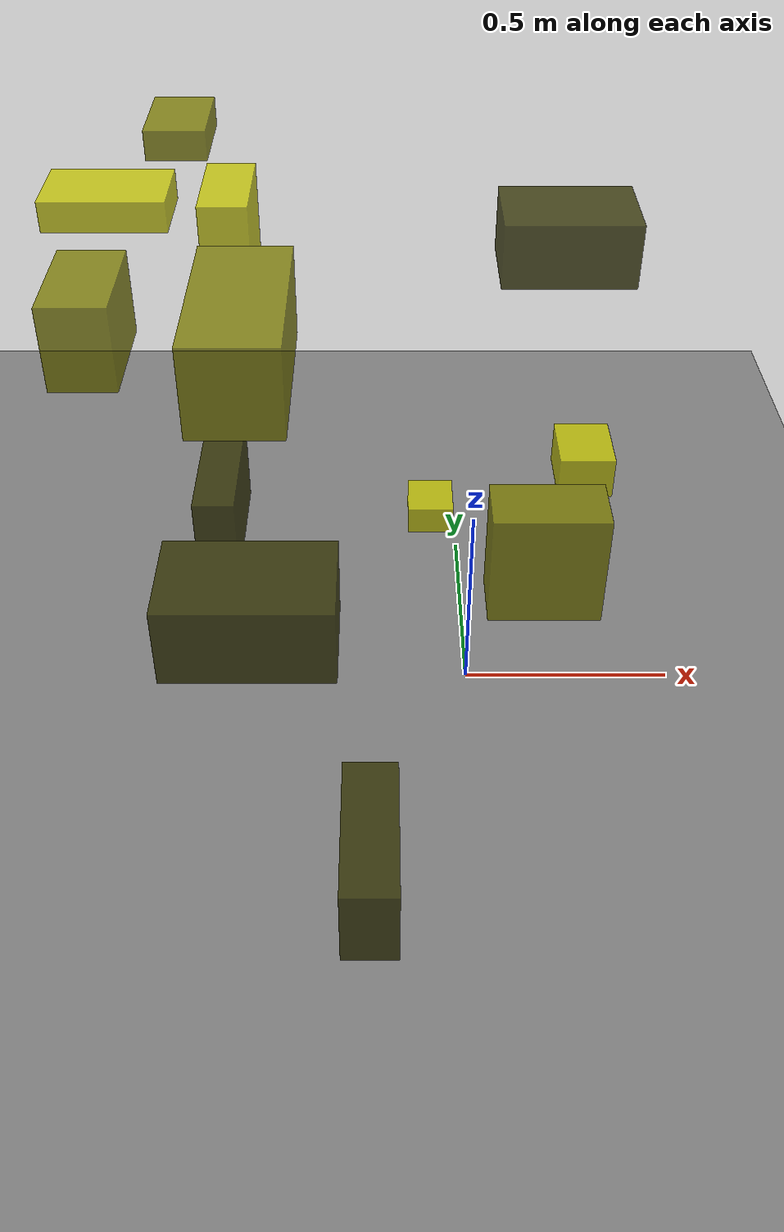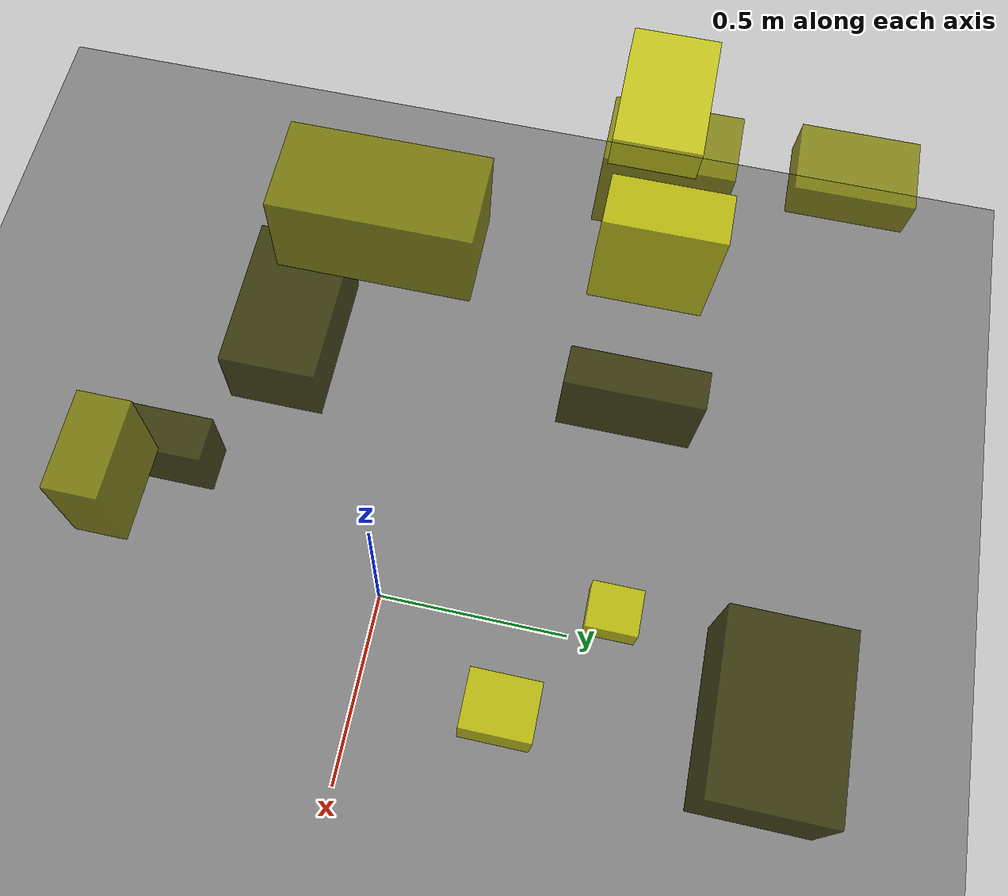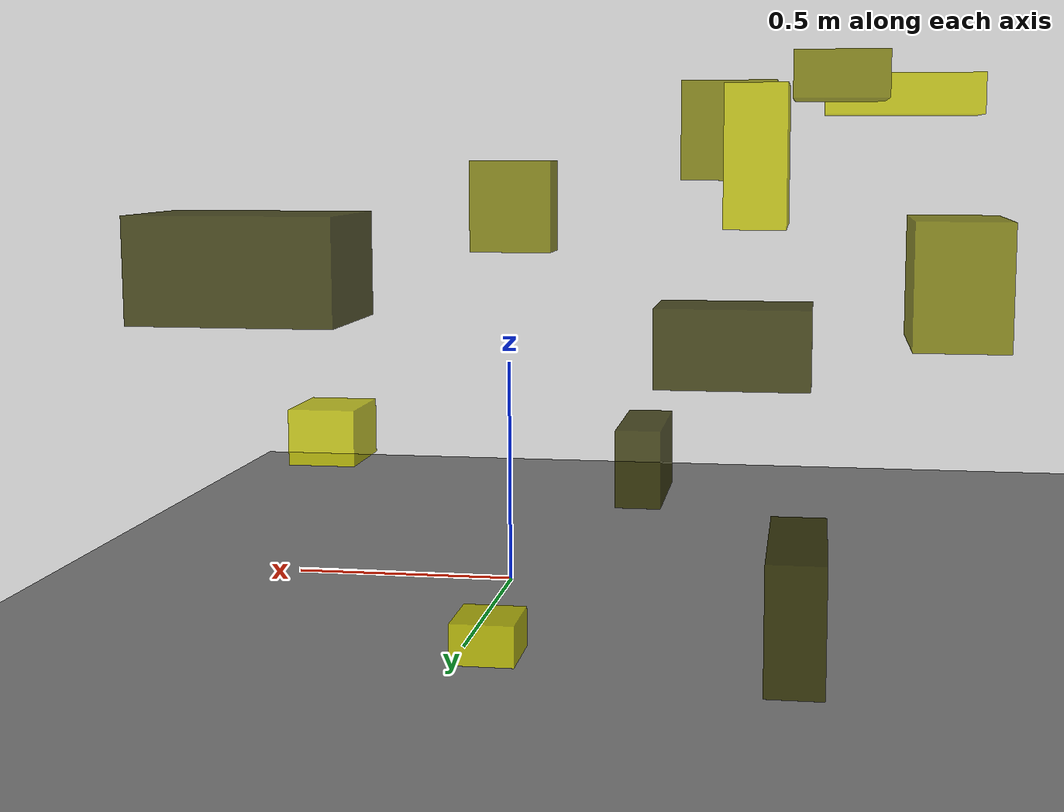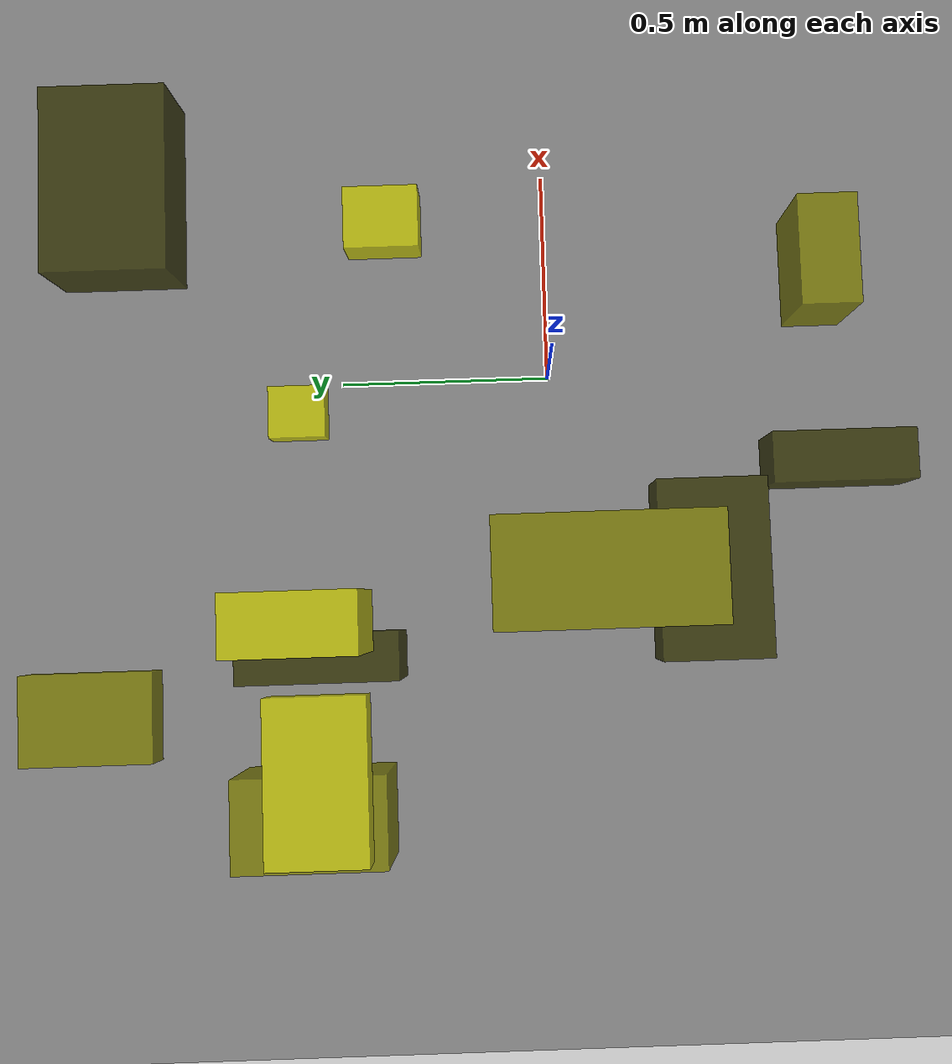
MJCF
<?xml version="1.0"?>
<mujoco model="obstacle_scene">
  <compiler angle="radian" coordinate="local"/>
  <option timestep="0.001" gravity="0 0 -9.81"/>

  <asset>
    <material name="obstacle_mat" rgba="0.8 0.8 0.0 0.8"/>
    <material name="ground_mat" rgba="0.5 0.5 0.5 1"/>
  </asset>

  <worldbody>
    <!-- Ground plane -->
    <geom name="ground" type="plane" size="3 3 0.1" material="ground_mat"/>

    <!-- Obstacles -->
    <body name="obstacle_0" pos="-0.486616 -0.311128 0.509052">
      <geom name="obs_0" type="box" size="0.184796 0.113148 0.095506" rgba="0.2 0.2 0.0 0.8"/>
    </body>
    <body name="obstacle_1" pos="-0.492285 -0.065811 1.015398">
      <geom name="obs_1" type="box" size="0.099092 0.201512 0.103644" rgba="0.5 0.5 0.0 0.8"/>
    </body>
    <body name="obstacle_2" pos="-0.072283 0.603628 0.058599">
      <geom name="obs_2" type="box" size="0.062163 0.067447 0.039876" rgba="0.8 0.8 0.0 0.8"/>
    </body>
    <body name="obstacle_3" pos="-0.652783 0.548347 0.128293">
      <geom name="obs_3" type="box" size="0.055314 0.186442 0.122788" rgba="0.2 0.2 0.0 0.8"/>
    </body>
    <body name="obstacle_4" pos="-0.712432 0.816301 1.096502">
      <geom name="obs_4" type="box" size="0.075583 0.111687 0.037796" rgba="0.5 0.5 0.0 0.8"/>
    </body>
    <body name="obstacle_5" pos="-0.566475 0.484703 0.964801">
      <geom name="obs_5" type="box" size="0.057103 0.120426 0.131249" rgba="0.8 0.8 0.0 0.8"/>
    </body>
    <body name="obstacle_6" pos="-0.233968 -0.663626 0.157544">
      <geom name="obs_6" type="box" size="0.058719 0.164463 0.100885" rgba="0.2 0.2 0.0 0.8"/>
    </body>
    <body name="obstacle_7" pos="-0.936193 0.488887 0.735215">
      <geom name="obs_7" type="box" size="0.086606 0.145204 0.116144" rgba="0.5 0.5 0.0 0.8"/>
    </body>
    <body name="obstacle_8" pos="0.300649 0.362727 0.400762">
      <geom name="obs_8" type="box" size="0.067873 0.081345 0.056172" rgba="0.8 0.8 0.0 0.8"/>
    </body>
    <body name="obstacle_9" pos="0.285605 0.854098 0.776770">
      <geom name="obs_9" type="box" size="0.180092 0.120084 0.092076" rgba="0.2 0.2 0.0 0.8"/>
    </body>
    <body name="obstacle_10" pos="0.085707 -0.502241 0.830893">
      <geom name="obs_10" type="box" size="0.103321 0.055246 0.114190" rgba="0.5 0.5 0.0 0.8"/>
    </body>
    <body name="obstacle_11" pos="-0.831464 0.439973 1.077697">
      <geom name="obs_11" type="box" size="0.142631 0.088399 0.037054" rgba="0.8 0.8 0.0 0.8"/>
    </body>
  </worldbody>
</mujoco>
